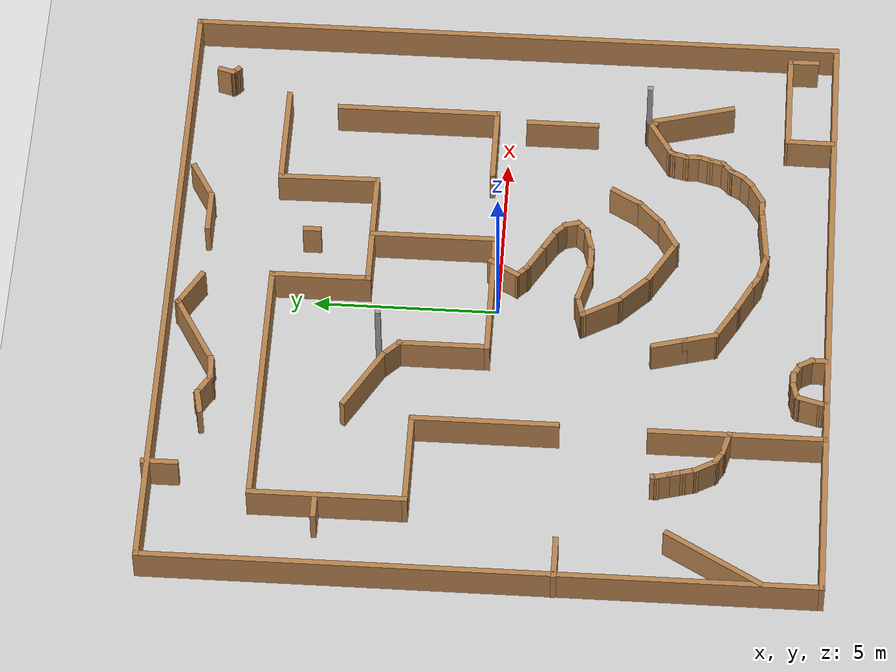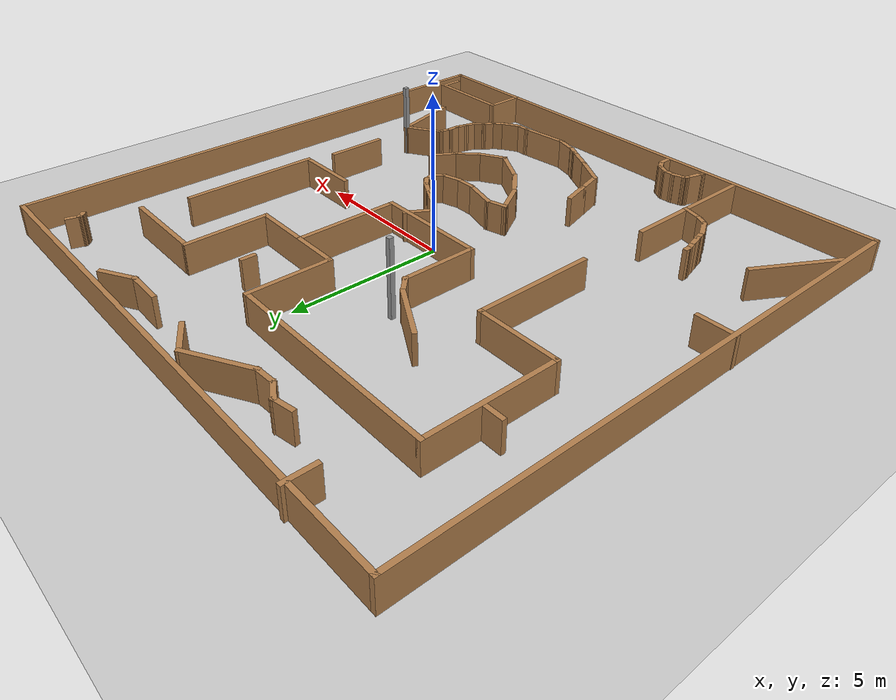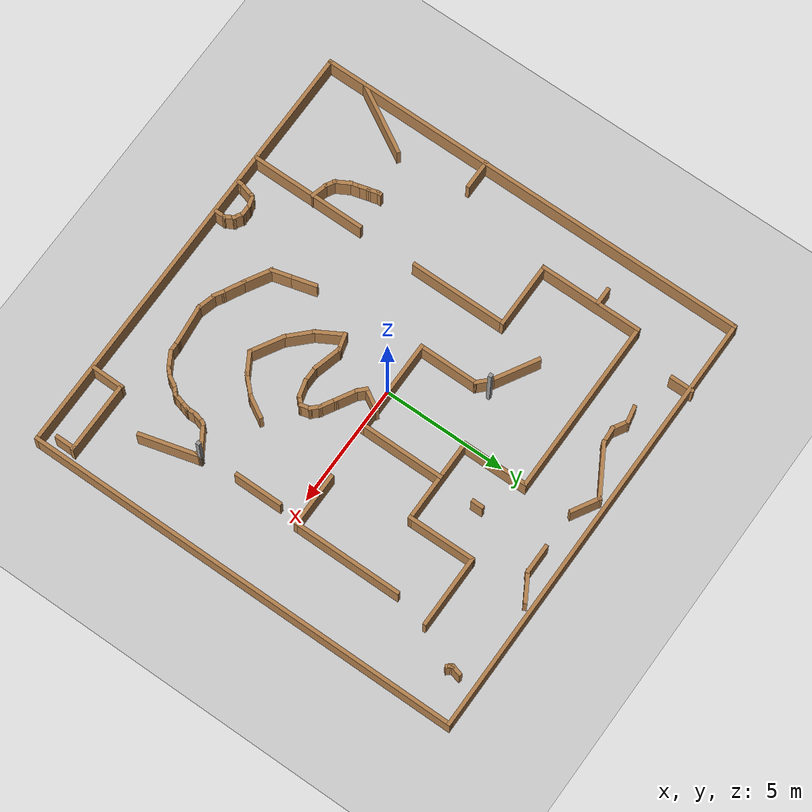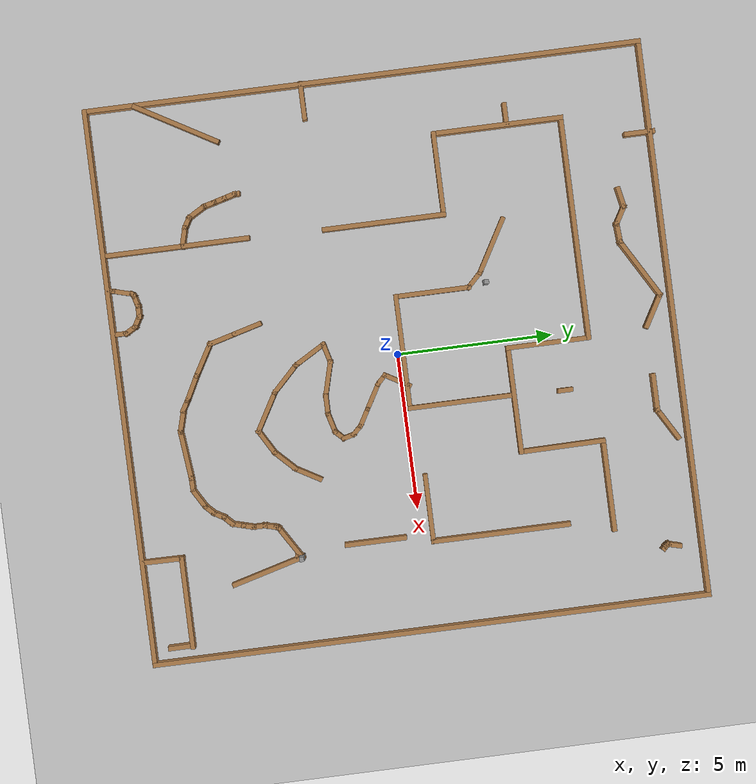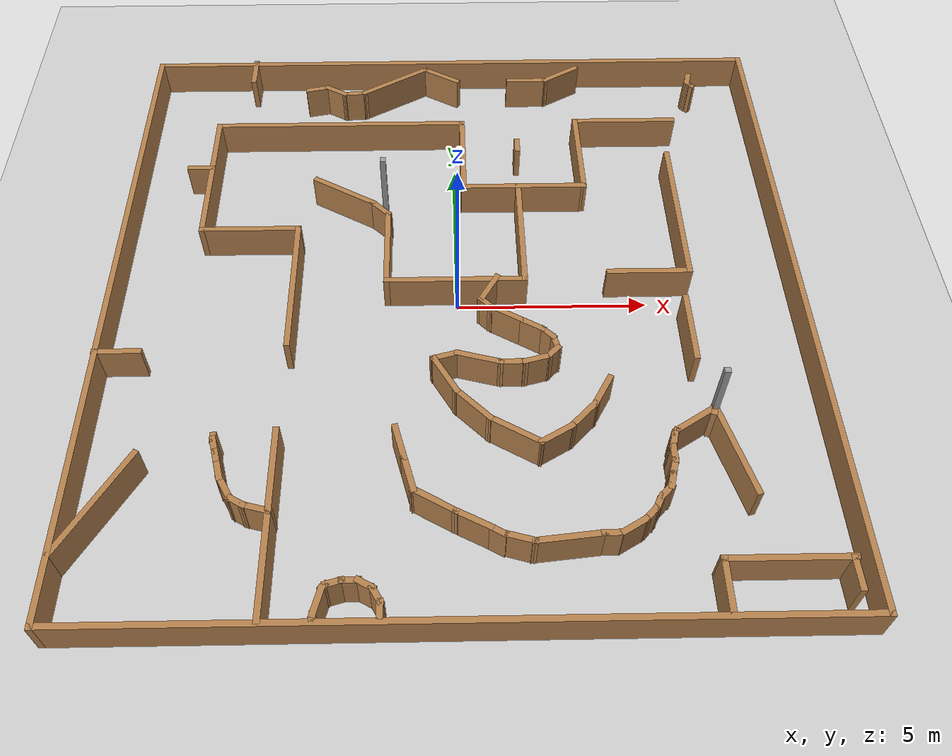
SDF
<sdf version="1.7">
 <world name="default">
  <light name="sun" type="directional">
   <pose>0 0 10 0 -0 0</pose>
   <diffuse>0.8 0.8 0.8 1</diffuse>
   <specular>0.2 0.2 0.2 1</specular>
   <attenuation>
    <range>1000</range>
    <constant>0.9</constant>
    <linear>0.01</linear>
    <quadratic>0.001</quadratic>
   </attenuation>
   <direction>-0.5 0.1 -0.9</direction>
   <spot><inner_angle>0</inner_angle><outer_angle>0</outer_angle><falloff>0</falloff></spot>
  </light>
  <model name="ground_plane">
   <static>1</static>
   <link name="link">
    <collision name="collision">
     <geometry><plane><normal>0 0 1</normal><size>100 100</size></plane></geometry>
     <surface><friction><ode><mu>100</mu><mu2>50</mu2></ode></friction></surface>
    </collision>
    <visual name="visual">
     <cast_shadows>0</cast_shadows>
     <geometry><plane><normal>0 0 1</normal><size>100 100</size></plane></geometry>
     <material>
      <script><uri>file://media/materials/scripts/gazebo.material</uri><name>Gazebo/Grey</name></script>
     </material>
    </visual>
   </link>
  </model>
  <gravity>0 0 -9.8</gravity>
  <magnetic_field>6e-06 2.3e-05 -4.2e-05</magnetic_field>
  <atmosphere type="adiabatic"/>
  <physics type="ode">
   <max_step_size>0.001</max_step_size>
   <real_time_factor>1</real_time_factor>
   <real_time_update_rate>1000</real_time_update_rate>
  </physics>
  <scene><ambient>0.4 0.4 0.4 1</ambient><background>0.7 0.7 0.7 1</background><shadows>1</shadows></scene>
  <audio><device>default</device></audio>
  <spherical_coordinates>
   <surface_model>EARTH_WGS84</surface_model>
   <latitude_deg>0</latitude_deg>
   <longitude_deg>0</longitude_deg>
   <elevation>0</elevation>
   <heading_deg>0</heading_deg>
  </spherical_coordinates>
  <model name="maze">
   <pose>-0.058499 0.020999 0 0 -0 0</pose>
   <link name="Wall_101">
    <collision name="Wall_101_Collision">
     <geometry><box><size>1 0.15 1</size></box></geometry>
     <pose>0 0 0.5 0 -0 0</pose>
    </collision>
    <visual name="Wall_101_Visual">
     <pose>0 0 0.5 0 -0 0</pose>
     <geometry><box><size>1 0.15 1</size></box></geometry>
     <material>
      <script><uri>file://media/materials/scripts/gazebo.material</uri><name>Gazebo/Wood</name></script>
      <ambient>1 1 1 1</ambient>
     </material>
     <meta><layer>0</layer></meta>
    </visual>
    <pose>-1.3665 -4.7025 0 0 -0 -1.30898</pose>
   </link>
   <link name="Wall_102">
    <collision name="Wall_102_Collision">
     <geometry><box><size>1 0.15 1</size></box></geometry>
     <pose>0 0 0.5 0 -0 0</pose>
    </collision>
    <visual name="Wall_102_Visual">
     <pose>0 0 0.5 0 -0 0</pose>
     <geometry><box><size>1 0.15 1</size></box></geometry>
     <material>
      <script><uri>file://media/materials/scripts/gazebo.material</uri><name>Gazebo/Wood</name></script>
      <ambient>1 1 1 1</ambient>
     </material>
     <meta><layer>0</layer></meta>
    </visual>
    <pose>-1.1465 -5.5235 0 0 -0 -1.30898</pose>
   </link>
   <link name="Wall_103">
    <collision name="Wall_103_Collision">
     <geometry><box><size>1.25 0.15 1</size></box></geometry>
     <pose>0 0 0.5 0 -0 0</pose>
    </collision>
    <visual name="Wall_103_Visual">
     <pose>0 0 0.5 0 -0 0</pose>
     <geometry><box><size>1.25 0.15 1</size></box></geometry>
     <material>
      <script><uri>file://media/materials/scripts/gazebo.material</uri><name>Gazebo/Wood</name></script>
      <ambient>1 1 1 1</ambient>
     </material>
     <meta><layer>0</layer></meta>
    </visual>
    <pose>-0.560001 -6.209 0 0 -0 -0.52343</pose>
   </link>
   <link name="Wall_104">
    <collision name="Wall_104_Collision">
     <geometry><box><size>0.99902 0.15 1</size></box></geometry>
     <pose>0 0 0.5 0 -0 0</pose>
    </collision>
    <visual name="Wall_104_Visual">
     <pose>0 0 0.5 0 -0 0</pose>
     <geometry><box><size>0.99902 0.15 1</size></box></geometry>
     <material>
      <script><uri>file://media/materials/scripts/gazebo.material</uri><name>Gazebo/Wood</name></script>
      <ambient>1 1 1 1</ambient>
     </material>
     <meta><layer>0</layer></meta>
    </visual>
    <pose>0.292999 -6.68 0 0 -0 -0.479979</pose>
   </link>
   <link name="Wall_105">
    <collision name="Wall_105_Collision">
     <geometry><box><size>0.494299 0.15 1</size></box></geometry>
     <pose>0 0 0.5 0 -0 0</pose>
    </collision>
    <visual name="Wall_105_Visual">
     <pose>0 0 0.5 0 -0 0</pose>
     <geometry><box><size>0.494299 0.15 1</size></box></geometry>
     <material>
      <script><uri>file://media/materials/scripts/gazebo.material</uri><name>Gazebo/Wood</name></script>
      <ambient>1 1 1 1</ambient>
     </material>
     <meta><layer>0</layer></meta>
    </visual>
    <pose>0.817855 -6.96333 0 0 -0 -0.532017</pose>
   </link>
   <link name="Wall_107">
    <collision name="Wall_107_Collision">
     <geometry><box><size>0.751236 0.15 1</size></box></geometry>
     <pose>0 0 0.5 0 -0 0</pose>
    </collision>
    <visual name="Wall_107_Visual">
     <pose>0 0 0.5 0 -0 0</pose>
     <geometry><box><size>0.751236 0.15 1</size></box></geometry>
     <material>
      <script><uri>file://media/materials/scripts/gazebo.material</uri><name>Gazebo/Wood</name></script>
      <ambient>1 1 1 1</ambient>
     </material>
     <meta><layer>0</layer></meta>
    </visual>
    <pose>1.336 -7.143 0 0 -0 -0.272817</pose>
   </link>
   <link name="Wall_108">
    <collision name="Wall_108_Collision">
     <geometry><box><size>1.67855 0.15 1</size></box></geometry>
     <pose>0 0 0.5 0 -0 0</pose>
    </collision>
    <visual name="Wall_108_Visual">
     <pose>0 0 0.5 0 -0 0</pose>
     <geometry><box><size>1.67855 0.15 1</size></box></geometry>
     <material>
      <script><uri>file://media/materials/scripts/gazebo.material</uri><name>Gazebo/Wood</name></script>
      <ambient>1 1 1 1</ambient>
     </material>
     <meta><layer>0</layer></meta>
    </visual>
    <pose>2.38569 -7.1451 0 0 -0 0.103422</pose>
   </link>
   <link name="Wall_109">
    <collision name="Wall_109_Collision">
     <geometry><box><size>0.50007 0.15 1</size></box></geometry>
     <pose>0 0 0.5 0 -0 0</pose>
    </collision>
    <visual name="Wall_109_Visual">
     <pose>0 0 0.5 0 -0 0</pose>
     <geometry><box><size>0.50007 0.15 1</size></box></geometry>
     <material>
      <script><uri>file://media/materials/scripts/gazebo.material</uri><name>Gazebo/Wood</name></script>
      <ambient>1 1 1 1</ambient>
     </material>
     <meta><layer>0</layer></meta>
    </visual>
    <pose>3.3143 -7.0627 0 0 -0 0.019997</pose>
   </link>
   <link name="Wall_113">
    <collision name="Wall_113_Collision">
     <geometry><box><size>0.75 0.15 1</size></box></geometry>
     <pose>0 0 0.5 0 -0 0</pose>
    </collision>
    <visual name="Wall_113_Visual">
     <pose>0 0 0.5 0 -0 0</pose>
     <geometry><box><size>0.75 0.15 1</size></box></geometry>
     <material>
      <script><uri>file://media/materials/scripts/gazebo.material</uri><name>Gazebo/Wood</name></script>
      <ambient>1 1 1 1</ambient>
     </material>
     <meta><layer>0</layer></meta>
    </visual>
    <pose>3.839 -6.892 0 0 -0 0.524112</pose>
   </link>
   <link name="Wall_114">
    <collision name="Wall_114_Collision">
     <geometry><box><size>0.5 0.15 1</size></box></geometry>
     <pose>0 0 0.5 0 -0 0</pose>
    </collision>
    <visual name="Wall_114_Visual">
     <pose>0 0 0.5 0 -0 0</pose>
     <geometry><box><size>0.5 0.15 1</size></box></geometry>
     <material>
      <script><uri>file://media/materials/scripts/gazebo.material</uri><name>Gazebo/Wood</name></script>
      <ambient>1 1 1 1</ambient>
     </material>
     <meta><layer>0</layer></meta>
    </visual>
    <pose>4.2225 -6.6185 0 0 -0 0.783378</pose>
   </link>
   <link name="Wall_115">
    <collision name="Wall_115_Collision">
     <geometry><box><size>0.5 0.15 1</size></box></geometry>
     <pose>0 0 0.5 0 -0 0</pose>
    </collision>
    <visual name="Wall_115_Visual">
     <pose>0 0 0.5 0 -0 0</pose>
     <geometry><box><size>0.5 0.15 1</size></box></geometry>
     <material>
      <script><uri>file://media/materials/scripts/gazebo.material</uri><name>Gazebo/Wood</name></script>
      <ambient>1 1 1 1</ambient>
     </material>
     <meta><layer>0</layer></meta>
    </visual>
    <pose>4.434 -6.343 0 0 -0 1.04847</pose>
   </link>
   <link name="Wall_116">
    <collision name="Wall_116_Collision">
     <geometry><box><size>0.5 0.15 1</size></box></geometry>
     <pose>0 0 0.5 0 -0 0</pose>
    </collision>
    <visual name="Wall_116_Visual">
     <pose>0 0 0.5 0 -0 0</pose>
     <geometry><box><size>0.5 0.15 1</size></box></geometry>
     <material>
      <script><uri>file://media/materials/scripts/gazebo.material</uri><name>Gazebo/Wood</name></script>
      <ambient>1 1 1 1</ambient>
     </material>
     <meta><layer>0</layer></meta>
    </visual>
    <pose>4.645 -6.0675 0 0 -0 0.785398</pose>
   </link>
   <link name="Wall_118">
    <collision name="Wall_118_Collision">
     <geometry><box><size>0.5 0.15 1</size></box></geometry>
     <pose>0 0 0.5 0 -0 0</pose>
    </collision>
    <visual name="Wall_118_Visual">
     <pose>0 0 0.5 0 -0 0</pose>
     <geometry><box><size>0.5 0.15 1</size></box></geometry>
     <material>
      <script><uri>file://media/materials/scripts/gazebo.material</uri><name>Gazebo/Wood</name></script>
      <ambient>1 1 1 1</ambient>
     </material>
     <meta><layer>0</layer></meta>
    </visual>
    <pose>4.814 -5.775 0 0 -0 1.3078</pose>
   </link>
   <link name="Wall_119">
    <collision name="Wall_119_Collision">
     <geometry><box><size>0.487087 0.15 1</size></box></geometry>
     <pose>0 0 0.5 0 -0 0</pose>
    </collision>
    <visual name="Wall_119_Visual">
     <pose>0 0 0.5 0 -0 0</pose>
     <geometry><box><size>0.487087 0.15 1</size></box></geometry>
     <material>
      <script><uri>file://media/materials/scripts/gazebo.material</uri><name>Gazebo/Wood</name></script>
      <ambient>1 1 1 1</ambient>
     </material>
     <meta><layer>0</layer></meta>
    </visual>
    <pose>4.9045 -5.44357 0 0 -0 1.30052</pose>
   </link>
   <link name="Wall_120">
    <collision name="Wall_120_Collision">
     <geometry><box><size>0.5 0.15 1</size></box></geometry>
     <pose>0 0 0.5 0 -0 0</pose>
    </collision>
    <visual name="Wall_120_Visual">
     <pose>0 0 0.5 0 -0 0</pose>
     <geometry><box><size>0.5 0.15 1</size></box></geometry>
     <material>
      <script><uri>file://media/materials/scripts/gazebo.material</uri><name>Gazebo/Wood</name></script>
      <ambient>1 1 1 1</ambient>
     </material>
     <meta><layer>0</layer></meta>
    </visual>
    <pose>4.9495 -5.09957 0 0 -0 1.5708</pose>
   </link>
   <link name="Wall_121">
    <collision name="Wall_121_Collision">
     <geometry><box><size>0.51275 0.15 1</size></box></geometry>
     <pose>0 0 0.5 0 -0 0</pose>
    </collision>
    <visual name="Wall_121_Visual">
     <pose>0 0 0.5 0 -0 0</pose>
     <geometry><box><size>0.51275 0.15 1</size></box></geometry>
     <material>
      <script><uri>file://media/materials/scripts/gazebo.material</uri><name>Gazebo/Wood</name></script>
      <ambient>1 1 1 1</ambient>
     </material>
     <meta><layer>0</layer></meta>
    </visual>
    <pose>4.995 -4.75558 0 0 -0 1.31723</pose>
   </link>
   <link name="Wall_122">
    <collision name="Wall_122_Collision">
     <geometry><box><size>0.25 0.15 1</size></box></geometry>
     <pose>0 0 0.5 0 -0 0</pose>
    </collision>
    <visual name="Wall_122_Visual">
     <pose>0 0 0.5 0 -0 0</pose>
     <geometry><box><size>0.25 0.15 1</size></box></geometry>
     <material>
      <script><uri>file://media/materials/scripts/gazebo.material</uri><name>Gazebo/Wood</name></script>
      <ambient>1 1 1 1</ambient>
     </material>
     <meta><layer>0</layer></meta>
    </visual>
    <pose>5.0655 -4.5365 0 0 -0 1.04918</pose>
   </link>
   <link name="Wall_123">
    <collision name="Wall_123_Collision">
     <geometry><box><size>1.33169 0.15 1</size></box></geometry>
     <pose>0 0 0.5 0 -0 0</pose>
    </collision>
    <visual name="Wall_123_Visual">
     <pose>0 0 0.5 0 -0 0</pose>
     <geometry><box><size>1.33169 0.15 1</size></box></geometry>
     <material>
      <script><uri>file://media/materials/scripts/gazebo.material</uri><name>Gazebo/Wood</name></script>
      <ambient>1 1 1 1</ambient>
     </material>
     <meta><layer>0</layer></meta>
    </visual>
    <pose>5.59344 -4.18293 0 0 -0 0.552473</pose>
   </link>
   <link name="Wall_124">
    <collision name="Wall_124_Collision">
     <geometry><box><size>0.300153 0.15 1</size></box></geometry>
     <pose>0 0 0.5 0 -0 0</pose>
    </collision>
    <visual name="Wall_124_Visual">
     <pose>0 0 0.5 0 -0 0</pose>
     <geometry><box><size>0.300153 0.15 1</size></box></geometry>
     <material>
      <script><uri>file://media/materials/scripts/gazebo.material</uri><name>Gazebo/Wood</name></script>
      <ambient>1 1 1 1</ambient>
     </material>
     <meta><layer>0</layer></meta>
    </visual>
    <pose>6.07362 -3.94536 0 0 -0 -1.83354</pose>
   </link>
   <link name="Wall_127">
    <collision name="Wall_127_Collision">
     <geometry><box><size>0.15 0.15 2.5</size></box></geometry>
     <pose>0 0 1.25 0 -0 0</pose>
    </collision>
    <visual name="Wall_127_Visual">
     <pose>0 0 1.25 0 -0 0</pose>
     <geometry><box><size>0.15 0.15 2.5</size></box></geometry>
     <material>
      <script><uri>file://media/materials/scripts/gazebo.material</uri><name>Gazebo/Grey</name></script>
      <ambient>1 1 1 1</ambient>
     </material>
     <meta><layer>0</layer></meta>
    </visual>
    <pose>6.0995 -3.852 0 0 -0 0</pose>
   </link>
   <link name="Wall_128">
    <collision name="Wall_128_Collision">
     <geometry><box><size>0.15 0.15 2.5</size></box></geometry>
     <pose>0 0 1.25 0 -0 0</pose>
    </collision>
    <visual name="Wall_128_Visual">
     <pose>0 0 1.25 0 -0 0</pose>
     <geometry><box><size>0.15 0.15 2.5</size></box></geometry>
     <material>
      <script><uri>file://media/materials/scripts/gazebo.material</uri><name>Gazebo/Wood</name></script>
      <ambient>1 1 1 1</ambient>
     </material>
     <meta><layer>0</layer></meta>
    </visual>
    <pose>6.0995 -3.852 0 0 -0 0</pose>
   </link>
   <link name="Wall_132">
    <collision name="Wall_132_Collision">
     <geometry><box><size>1 0.15 1</size></box></geometry>
     <pose>0 0 0.5 0 -0 0</pose>
    </collision>
    <visual name="Wall_132_Visual">
     <pose>0 0 0.5 0 -0 0</pose>
     <geometry><box><size>1 0.15 1</size></box></geometry>
     <material>
      <script><uri>file://media/materials/scripts/gazebo.material</uri><name>Gazebo/Wood</name></script>
      <ambient>1 1 1 1</ambient>
     </material>
     <meta><layer>0</layer></meta>
    </visual>
    <pose>0.874999 -0.141999 0 0 -0 -2.09447</pose>
   </link>
   <link name="Wall_133">
    <collision name="Wall_133_Collision">
     <geometry><box><size>0.5 0.15 1</size></box></geometry>
     <pose>0 0 0.5 0 -0 0</pose>
    </collision>
    <visual name="Wall_133_Visual">
     <pose>0 0 0.5 0 -0 0</pose>
     <geometry><box><size>0.5 0.15 1</size></box></geometry>
     <material>
      <script><uri>file://media/materials/scripts/gazebo.material</uri><name>Gazebo/Wood</name></script>
      <ambient>1 1 1 1</ambient>
     </material>
     <meta><layer>0</layer></meta>
    </visual>
    <pose>0.786499 -0.633999 0 0 -0 -0.785398</pose>
   </link>
   <link name="Wall_134">
    <collision name="Wall_134_Collision">
     <geometry><box><size>1 0.15 1</size></box></geometry>
     <pose>0 0 0.5 0 -0 0</pose>
    </collision>
    <visual name="Wall_134_Visual">
     <pose>0 0 0.5 0 -0 0</pose>
     <geometry><box><size>1 0.15 1</size></box></geometry>
     <material>
      <script><uri>file://media/materials/scripts/gazebo.material</uri><name>Gazebo/Wood</name></script>
      <ambient>1 1 1 1</ambient>
     </material>
     <meta><layer>0</layer></meta>
    </visual>
    <pose>1.2785 -0.970499 0 0 -0 -0.52367</pose>
   </link>
   <link name="Wall_135">
    <collision name="Wall_135_Collision">
     <geometry><box><size>0.75 0.15 1</size></box></geometry>
     <pose>0 0 0.5 0 -0 0</pose>
    </collision>
    <visual name="Wall_135_Visual">
     <pose>0 0 0.5 0 -0 0</pose>
     <geometry><box><size>0.75 0.15 1</size></box></geometry>
     <material>
      <script><uri>file://media/materials/scripts/gazebo.material</uri><name>Gazebo/Wood</name></script>
      <ambient>1 1 1 1</ambient>
     </material>
     <meta><layer>0</layer></meta>
    </visual>
    <pose>1.906 -1.333 0 0 -0 -0.524112</pose>
   </link>
   <link name="Wall_136">
    <collision name="Wall_136_Collision">
     <geometry><box><size>0.5 0.15 1</size></box></geometry>
     <pose>0 0 0.5 0 -0 0</pose>
    </collision>
    <visual name="Wall_136_Visual">
     <pose>0 0 0.5 0 -0 0</pose>
     <geometry><box><size>0.5 0.15 1</size></box></geometry>
     <material>
      <script><uri>file://media/materials/scripts/gazebo.material</uri><name>Gazebo/Wood</name></script>
      <ambient>1 1 1 1</ambient>
     </material>
     <meta><layer>0</layer></meta>
    </visual>
    <pose>2.2895 -1.6065 0 0 -0 -0.783378</pose>
   </link>
   <link name="Wall_137">
    <collision name="Wall_137_Collision">
     <geometry><box><size>0.501001 0.15 1</size></box></geometry>
     <pose>0 0 0.5 0 -0 0</pose>
    </collision>
    <visual name="Wall_137_Visual">
     <pose>0 0 0.5 0 -0 0</pose>
     <geometry><box><size>0.501001 0.15 1</size></box></geometry>
     <material>
      <script><uri>file://media/materials/scripts/gazebo.material</uri><name>Gazebo/Wood</name></script>
      <ambient>1 1 1 1</ambient>
     </material>
     <meta><layer>0</layer></meta>
    </visual>
    <pose>2.459 -1.8995 0 0 -0 -1.30854</pose>
   </link>
   <link name="Wall_138">
    <collision name="Wall_138_Collision">
     <geometry><box><size>0.5 0.15 1</size></box></geometry>
     <pose>0 0 0.5 0 -0 0</pose>
    </collision>
    <visual name="Wall_138_Visual">
     <pose>0 0 0.5 0 -0 0</pose>
     <geometry><box><size>0.5 0.15 1</size></box></geometry>
     <material>
      <script><uri>file://media/materials/scripts/gazebo.material</uri><name>Gazebo/Wood</name></script>
      <ambient>1 1 1 1</ambient>
     </material>
     <meta><layer>0</layer></meta>
    </visual>
    <pose>2.3805 -2.1925 0 0 -0 -2.35821</pose>
   </link>
   <link name="Wall_139">
    <collision name="Wall_139_Collision">
     <geometry><box><size>0.75 0.15 1</size></box></geometry>
     <pose>0 0 0.5 0 -0 0</pose>
    </collision>
    <visual name="Wall_139_Visual">
     <pose>0 0 0.5 0 -0 0</pose>
     <geometry><box><size>0.75 0.15 1</size></box></geometry>
     <material>
      <script><uri>file://media/materials/scripts/gazebo.material</uri><name>Gazebo/Wood</name></script>
      <ambient>1 1 1 1</ambient>
     </material>
     <meta><layer>0</layer></meta>
    </visual>
    <pose>1.967 -2.3935 0 0 -0 -2.88002</pose>
   </link>
   <link name="Wall_140">
    <collision name="Wall_140_Collision">
     <geometry><box><size>0.75 0.15 1</size></box></geometry>
     <pose>0 0 0.5 0 -0 0</pose>
    </collision>
    <visual name="Wall_140_Visual">
     <pose>0 0 0.5 0 -0 0</pose>
     <geometry><box><size>0.75 0.15 1</size></box></geometry>
     <material>
      <script><uri>file://media/materials/scripts/gazebo.material</uri><name>Gazebo/Wood</name></script>
      <ambient>1 1 1 1</ambient>
     </material>
     <meta><layer>0</layer></meta>
    </visual>
    <pose>1.3775 -2.471 0 0 -0 3.14159</pose>
   </link>
   <link name="Wall_141">
    <collision name="Wall_141_Collision">
     <geometry><box><size>1.25 0.15 1</size></box></geometry>
     <pose>0 0 0.5 0 -0 0</pose>
    </collision>
    <visual name="Wall_141_Visual">
     <pose>0 0 0.5 0 -0 0</pose>
     <geometry><box><size>1.25 0.15 1</size></box></geometry>
     <material>
      <script><uri>file://media/materials/scripts/gazebo.material</uri><name>Gazebo/Wood</name></script>
      <ambient>1 1 1 1</ambient>
     </material>
     <meta><layer>0</layer></meta>
    </visual>
    <pose>0.545999 -2.329 0 0 -0 2.88052</pose>
   </link>
   <link name="Wall_142">
    <collision name="Wall_142_Collision">
     <geometry><box><size>0.75 0.15 1</size></box></geometry>
     <pose>0 0 0.5 0 -0 0</pose>
    </collision>
    <visual name="Wall_142_Visual">
     <pose>0 0 0.5 0 -0 0</pose>
     <geometry><box><size>0.75 0.15 1</size></box></geometry>
     <material>
      <script><uri>file://media/materials/scripts/gazebo.material</uri><name>Gazebo/Wood</name></script>
      <ambient>1 1 1 1</ambient>
     </material>
     <meta><layer>0</layer></meta>
    </visual>
    <pose>-0.275501 -2.2645 0 0 -0 -2.88045</pose>
   </link>
   <link name="Wall_143">
    <collision name="Wall_143_Collision">
     <geometry><box><size>1.25 0.15 1</size></box></geometry>
     <pose>0 0 0.5 0 -0 0</pose>
    </collision>
    <visual name="Wall_143_Visual">
     <pose>0 0 0.5 0 -0 0</pose>
     <geometry><box><size>1.25 0.15 1</size></box></geometry>
     <material>
      <script><uri>file://media/materials/scripts/gazebo.material</uri><name>Gazebo/Wood</name></script>
      <ambient>1 1 1 1</ambient>
     </material>
     <meta><layer>0</layer></meta>
    </visual>
    <pose>-0.290501 -2.8185 0 0 -0 -1.04737</pose>
   </link>
   <link name="Wall_144">
    <collision name="Wall_144_Collision">
     <geometry><box><size>1.25 0.15 1</size></box></geometry>
     <pose>0 0 0.5 0 -0 0</pose>
    </collision>
    <visual name="Wall_144_Visual">
     <pose>0 0 0.5 0 -0 0</pose>
     <geometry><box><size>1.25 0.15 1</size></box></geometry>
     <material>
      <script><uri>file://media/materials/scripts/gazebo.material</uri><name>Gazebo/Wood</name></script>
      <ambient>1 1 1 1</ambient>
     </material>
     <meta><layer>0</layer></meta>
    </visual>
    <pose>0.373499 -3.6835 0 0 -0 -0.784755</pose>
   </link>
   <link name="Wall_145">
    <collision name="Wall_145_Collision">
     <geometry><box><size>1.5 0.15 1</size></box></geometry>
     <pose>0 0 0.5 0 -0 0</pose>
    </collision>
    <visual name="Wall_145_Visual">
     <pose>0 0 0.5 0 -0 0</pose>
     <geometry><box><size>1.5 0.15 1</size></box></geometry>
     <material>
      <script><uri>file://media/materials/scripts/gazebo.material</uri><name>Gazebo/Wood</name></script>
      <ambient>1 1 1 1</ambient>
     </material>
     <meta><layer>0</layer></meta>
    </visual>
    <pose>1.347 -4.4095 0 0 -0 -0.523649</pose>
   </link>
   <link name="Wall_146">
    <collision name="Wall_146_Collision">
     <geometry><box><size>1 0.15 1</size></box></geometry>
     <pose>0 0 0.5 0 -0 0</pose>
    </collision>
    <visual name="Wall_146_Visual">
     <pose>0 0 0.5 0 -0 0</pose>
     <geometry><box><size>1 0.15 1</size></box></geometry>
     <material>
      <script><uri>file://media/materials/scripts/gazebo.material</uri><name>Gazebo/Wood</name></script>
      <ambient>1 1 1 1</ambient>
     </material>
     <meta><layer>0</layer></meta>
    </visual>
    <pose>2.3 -4.5345 0 0 -0 0.523083</pose>
   </link>
   <link name="Wall_147">
    <collision name="Wall_147_Collision">
     <geometry><box><size>1 0.15 1</size></box></geometry>
     <pose>0 0 0.5 0 -0 0</pose>
    </collision>
    <visual name="Wall_147_Visual">
     <pose>0 0 0.5 0 -0 0</pose>
     <geometry><box><size>1 0.15 1</size></box></geometry>
     <material>
      <script><uri>file://media/materials/scripts/gazebo.material</uri><name>Gazebo/Wood</name></script>
      <ambient>1 1 1 1</ambient>
     </material>
     <meta><layer>0</layer></meta>
    </visual>
    <pose>2.969 -4.0215 0 0 -0 0.785398</pose>
   </link>
   <link name="Wall_148">
    <collision name="Wall_148_Collision">
     <geometry><box><size>1 0.15 1</size></box></geometry>
     <pose>0 0 0.5 0 -0 0</pose>
    </collision>
    <visual name="Wall_148_Visual">
     <pose>0 0 0.5 0 -0 0</pose>
     <geometry><box><size>1 0.15 1</size></box></geometry>
     <material>
      <script><uri>file://media/materials/scripts/gazebo.material</uri><name>Gazebo/Wood</name></script>
      <ambient>1 1 1 1</ambient>
     </material>
     <meta><layer>0</layer></meta>
    </visual>
    <pose>3.482 -3.353 0 0 -0 1.04713</pose>
   </link>
   <link name="Wall_151">
    <collision name="Wall_151_Collision">
     <geometry><box><size>1.25 0.15 1</size></box></geometry>
     <pose>0 0 0.5 0 -0 0</pose>
    </collision>
    <visual name="Wall_151_Visual">
     <pose>0 0 0.5 0 -0 0</pose>
     <geometry><box><size>1.25 0.15 1</size></box></geometry>
     <material>
      <script><uri>file://media/materials/scripts/gazebo.material</uri><name>Gazebo/Wood</name></script>
      <ambient>1 1 1 1</ambient>
     </material>
     <meta><layer>0</layer></meta>
    </visual>
    <pose>-8.3795 -2.013 0 0 -0 0</pose>
   </link>
   <link name="Wall_153">
    <collision name="Wall_153_Collision">
     <geometry><box><size>0.75 0.15 1</size></box></geometry>
     <pose>0 0 0.5 0 -0 0</pose>
    </collision>
    <visual name="Wall_153_Visual">
     <pose>0 0 0.5 0 -0 0</pose>
     <geometry><box><size>0.75 0.15 1</size></box></geometry>
     <material>
      <script><uri>file://media/materials/scripts/gazebo.material</uri><name>Gazebo/Wood</name></script>
      <ambient>1 1 1 1</ambient>
     </material>
     <meta><layer>0</layer></meta>
    </visual>
    <pose>-7.1285 4.371 0 0 -0 3.14159</pose>
   </link>
   <link name="Wall_155">
    <collision name="Wall_155_Collision">
     <geometry><box><size>1 0.15 1</size></box></geometry>
     <pose>0 0 0.5 0 -0 0</pose>
    </collision>
    <visual name="Wall_155_Visual">
     <pose>0 0 0.5 0 -0 0</pose>
     <geometry><box><size>1 0.15 1</size></box></geometry>
     <material>
      <script><uri>file://media/materials/scripts/gazebo.material</uri><name>Gazebo/Wood</name></script>
      <ambient>1 1 1 1</ambient>
     </material>
     <meta><layer>0</layer></meta>
    </visual>
    <pose>-6.0035 8.548 0 0 -0 -1.5708</pose>
   </link>
   <link name="Wall_157">
    <collision name="Wall_157_Collision">
     <geometry><box><size>0.741291 0.15 1</size></box></geometry>
     <pose>0 0 0.5 0 -0 0</pose>
    </collision>
    <visual name="Wall_157_Visual">
     <pose>0 0 0.5 0 -0 0</pose>
     <geometry><box><size>0.741291 0.15 1</size></box></geometry>
     <material>
      <script><uri>file://media/materials/scripts/gazebo.material</uri><name>Gazebo/Wood</name></script>
      <ambient>1 1 1 1</ambient>
     </material>
     <meta><layer>0</layer></meta>
    </visual>
    <pose>-4.0115 7.7005 0 0 -0 0.195737</pose>
   </link>
   <link name="Wall_158">
    <collision name="Wall_158_Collision">
     <geometry><box><size>0.749467 0.15 1</size></box></geometry>
     <pose>0 0 0.5 0 -0 0</pose>
    </collision>
    <visual name="Wall_158_Visual">
     <pose>0 0 0.5 0 -0 0</pose>
     <geometry><box><size>0.749467 0.15 1</size></box></geometry>
     <material>
      <script><uri>file://media/materials/scripts/gazebo.material</uri><name>Gazebo/Wood</name></script>
      <ambient>1 1 1 1</ambient>
     </material>
     <meta><layer>0</layer></meta>
    </visual>
    <pose>-3.462 7.608 0 0 -0 -0.524112</pose>
   </link>
   <link name="Wall_159">
    <collision name="Wall_159_Collision">
     <geometry><box><size>0.752327 0.15 1</size></box></geometry>
     <pose>0 0 0.5 0 -0 0</pose>
    </collision>
    <visual name="Wall_159_Visual">
     <pose>0 0 0.5 0 -0 0</pose>
     <geometry><box><size>0.752327 0.15 1</size></box></geometry>
     <material>
      <script><uri>file://media/materials/scripts/gazebo.material</uri><name>Gazebo/Wood</name></script>
      <ambient>1 1 1 1</ambient>
     </material>
     <meta><layer>0</layer></meta>
    </visual>
    <pose>-2.9025 7.478 0 0 -0 0.066568</pose>
   </link>
   <link name="Wall_160">
    <collision name="Wall_160_Collision">
     <geometry><box><size>2.25 0.15 1</size></box></geometry>
     <pose>0 0 0.5 0 -0 0</pose>
    </collision>
    <visual name="Wall_160_Visual">
     <pose>0 0 0.5 0 -0 0</pose>
     <geometry><box><size>2.25 0.15 1</size></box></geometry>
     <material>
      <script><uri>file://media/materials/scripts/gazebo.material</uri><name>Gazebo/Wood</name></script>
      <ambient>1 1 1 1</ambient>
     </material>
     <meta><layer>0</layer></meta>
    </visual>
    <pose>-1.693 8.023 0 0 -0 0.523516</pose>
   </link>
   <link name="Wall_161">
    <collision name="Wall_161_Collision">
     <geometry><box><size>1.25 0.15 1</size></box></geometry>
     <pose>0 0 0.5 0 -0 0</pose>
    </collision>
    <visual name="Wall_161_Visual">
     <pose>0 0 0.5 0 -0 0</pose>
     <geometry><box><size>1.25 0.15 1</size></box></geometry>
     <material>
      <script><uri>file://media/materials/scripts/gazebo.material</uri><name>Gazebo/Wood</name></script>
      <ambient>1 1 1 1</ambient>
     </material>
     <meta><layer>0</layer></meta>
    </visual>
    <pose>-0.307501 8.273 0 0 -0 -0.523884</pose>
   </link>
   <link name="Wall_163">
    <collision name="Wall_163_Collision">
     <geometry><box><size>1.25 0.15 1</size></box></geometry>
     <pose>0 0 0.5 0 -0 0</pose>
    </collision>
    <visual name="Wall_163_Visual">
     <pose>0 0 0.5 0 -0 0</pose>
     <geometry><box><size>1.25 0.15 1</size></box></geometry>
     <material>
      <script><uri>file://media/materials/scripts/gazebo.material</uri><name>Gazebo/Wood</name></script>
      <ambient>1 1 1 1</ambient>
     </material>
     <meta><layer>0</layer></meta>
    </visual>
    <pose>2.3185 7.998 0 0 -0 0</pose>
   </link>
   <link name="Wall_164">
    <collision name="Wall_164_Collision">
     <geometry><box><size>1.25 0.15 1</size></box></geometry>
     <pose>0 0 0.5 0 -0 0</pose>
    </collision>
    <visual name="Wall_164_Visual">
     <pose>0 0 0.5 0 -0 0</pose>
     <geometry><box><size>1.25 0.15 1</size></box></geometry>
     <material>
      <script><uri>file://media/materials/scripts/gazebo.material</uri><name>Gazebo/Wood</name></script>
      <ambient>1 1 1 1</ambient>
     </material>
     <meta><layer>0</layer></meta>
    </visual>
    <pose>3.345 8.273 0 0 -0 0.52343</pose>
   </link>
   <link name="Wall_166">
    <collision name="Wall_166_Collision">
     <geometry><box><size>0.5 0.15 1</size></box></geometry>
     <pose>0 0 0.5 0 -0 0</pose>
    </collision>
    <visual name="Wall_166_Visual">
     <pose>0 0 0.5 0 -0 0</pose>
     <geometry><box><size>0.5 0.15 1</size></box></geometry>
     <material>
      <script><uri>file://media/materials/scripts/gazebo.material</uri><name>Gazebo/Wood</name></script>
      <ambient>1 1 1 1</ambient>
     </material>
     <meta><layer>0</layer></meta>
    </visual>
    <pose>1.8695 5.154 0 0 -0 -1.5708</pose>
   </link>
   <link name="Wall_168">
    <collision name="Wall_168_Collision">
     <geometry><box><size>0.503493 0.15 1</size></box></geometry>
     <pose>0 0 0.5 0 -0 0</pose>
    </collision>
    <visual name="Wall_168_Visual">
     <pose>0 0 0.5 0 -0 0</pose>
     <geometry><box><size>0.503493 0.15 1</size></box></geometry>
     <material>
      <script><uri>file://media/materials/scripts/gazebo.material</uri><name>Gazebo/Wood</name></script>
      <ambient>1 1 1 1</ambient>
     </material>
     <meta><layer>0</layer></meta>
    </visual>
    <pose>7.2235 7.9775 0 0 -0 -1.83432</pose>
   </link>
   <link name="Wall_169">
    <collision name="Wall_169_Collision">
     <geometry><box><size>0.249895 0.15 1</size></box></geometry>
     <pose>0 0 0.5 0 -0 0</pose>
    </collision>
    <visual name="Wall_169_Visual">
     <pose>0 0 0.5 0 -0 0</pose>
     <geometry><box><size>0.249895 0.15 1</size></box></geometry>
     <material>
      <script><uri>file://media/materials/scripts/gazebo.material</uri><name>Gazebo/Wood</name></script>
      <ambient>1 1 1 1</ambient>
     </material>
     <meta><layer>0</layer></meta>
    </visual>
    <pose>7.2025 7.764 0 0 -0 -1.04417</pose>
   </link>
   <link name="Wall_170">
    <collision name="Wall_170_Collision">
     <geometry><box><size>0.249035 0.15 1</size></box></geometry>
     <pose>0 0 0.5 0 -0 0</pose>
    </collision>
    <visual name="Wall_170_Visual">
     <pose>0 0 0.5 0 -0 0</pose>
     <geometry><box><size>0.249035 0.15 1</size></box></geometry>
     <material>
      <script><uri>file://media/materials/scripts/gazebo.material</uri><name>Gazebo/Wood</name></script>
      <ambient>1 1 1 1</ambient>
     </material>
     <meta><layer>0</layer></meta>
    </visual>
    <pose>7.2635 7.687 0 0 -0 -0.756834</pose>
   </link>
   <link name="Wall_172">
    <collision name="Wall_172_Collision">
     <geometry><box><size>2 0.15 1</size></box></geometry>
     <pose>0 0 0.5 0 -0 0</pose>
    </collision>
    <visual name="Wall_172_Visual">
     <pose>0 0 0.5 0 -0 0</pose>
     <geometry><box><size>2 0.15 1</size></box></geometry>
     <material>
      <script><uri>file://media/materials/scripts/gazebo.material</uri><name>Gazebo/Wood</name></script>
      <ambient>1 1 1 1</ambient>
     </material>
     <meta><layer>0</layer></meta>
    </visual>
    <pose>5.8985 -1.469 0 0 -0 -1.5708</pose>
   </link>
   <link name="Wall_174">
    <collision name="Wall_174_Collision">
     <geometry><box><size>0.25 0.15 1</size></box></geometry>
     <pose>0 0 0.5 0 -0 0</pose>
    </collision>
    <visual name="Wall_174_Visual">
     <pose>0 0 0.5 0 -0 0</pose>
     <geometry><box><size>0.25 0.15 1</size></box></geometry>
     <material>
      <script><uri>file://media/materials/scripts/gazebo.material</uri><name>Gazebo/Wood</name></script>
      <ambient>1 1 1 1</ambient>
     </material>
     <meta><layer>0</layer></meta>
    </visual>
    <pose>-3.1075 -8.854 0 0 -0 1.5708</pose>
   </link>
   <link name="Wall_175">
    <collision name="Wall_175_Collision">
     <geometry><box><size>0.749634 0.15 1</size></box></geometry>
     <pose>0 0 0.5 0 -0 0</pose>
    </collision>
    <visual name="Wall_175_Visual">
     <pose>0 0 0.5 0 -0 0</pose>
     <geometry><box><size>0.749634 0.15 1</size></box></geometry>
     <material>
      <script><uri>file://media/materials/scripts/gazebo.material</uri><name>Gazebo/Wood</name></script>
      <ambient>1 1 1 1</ambient>
     </material>
     <meta><layer>0</layer></meta>
    </visual>
    <pose>-3.0285 -8.515 0 0 -0 1.30396</pose>
   </link>
   <link name="Wall_176">
    <collision name="Wall_176_Collision">
     <geometry><box><size>0.250409 0.15 1</size></box></geometry>
     <pose>0 0 0.5 0 -0 0</pose>
    </collision>
    <visual name="Wall_176_Visual">
     <pose>0 0 0.5 0 -0 0</pose>
     <geometry><box><size>0.250409 0.15 1</size></box></geometry>
     <material>
      <script><uri>file://media/materials/scripts/gazebo.material</uri><name>Gazebo/Wood</name></script>
      <ambient>1 1 1 1</ambient>
     </material>
     <meta><layer>0</layer></meta>
    </visual>
    <pose>-2.914 -8.1905 0 0 -0 0.785398</pose>
   </link>
   <link name="Wall_177">
    <collision name="Wall_177_Collision">
     <geometry><box><size>0.497403 0.15 1</size></box></geometry>
     <pose>0 0 0.5 0 -0 0</pose>
    </collision>
    <visual name="Wall_177_Visual">
     <pose>0 0 0.5 0 -0 0</pose>
     <geometry><box><size>0.497403 0.15 1</size></box></geometry>
     <material>
      <script><uri>file://media/materials/scripts/gazebo.material</uri><name>Gazebo/Wood</name></script>
      <ambient>1 1 1 1</ambient>
     </material>
     <meta><layer>0</layer></meta>
    </visual>
    <pose>-2.711 -8.109 0 0 -0 0.268019</pose>
   </link>
   <link name="Wall_178">
    <collision name="Wall_178_Collision">
     <geometry><box><size>0.5 0.15 1</size></box></geometry>
     <pose>0 0 0.5 0 -0 0</pose>
    </collision>
    <visual name="Wall_178_Visual">
     <pose>0 0 0.5 0 -0 0</pose>
     <geometry><box><size>0.5 0.15 1</size></box></geometry>
     <material>
      <script><uri>file://media/materials/scripts/gazebo.material</uri><name>Gazebo/Wood</name></script>
      <ambient>1 1 1 1</ambient>
     </material>
     <meta><layer>0</layer></meta>
    </visual>
    <pose>-2.3685 -8.063 0 0 -0 0</pose>
   </link>
   <link name="Wall_186">
    <collision name="Wall_186_Collision">
     <geometry><box><size>1.36185 0.15 1</size></box></geometry>
     <pose>0 0 0.5 0 -0 0</pose>
    </collision>
    <visual name="Wall_186_Visual">
     <pose>0 0 0.5 0 -0 0</pose>
     <geometry><box><size>1.36185 0.15 1</size></box></geometry>
     <material>
      <script><uri>file://media/materials/scripts/gazebo.material</uri><name>Gazebo/Wood</name></script>
      <ambient>1 1 1 1</ambient>
     </material>
     <meta><layer>0</layer></meta>
    </visual>
    <pose>5.64477 -8.30344 0 0 -0 1.55994</pose>
   </link>
   <link name="Wall_187">
    <collision name="Wall_187_Collision">
     <geometry><box><size>3 0.15 1</size></box></geometry>
     <pose>0 0 0.5 0 -0 0</pose>
    </collision>
    <visual name="Wall_187_Visual">
     <pose>0 0 0.5 0 -0 0</pose>
     <geometry><box><size>3 0.15 1</size></box></geometry>
     <material>
      <script><uri>file://media/materials/scripts/gazebo.material</uri><name>Gazebo/Wood</name></script>
      <ambient>1 1 1 1</ambient>
     </material>
     <meta><layer>0</layer></meta>
    </visual>
    <pose>7.07635 -7.70412 0 0 -0 0</pose>
   </link>
   <link name="Wall_190">
    <collision name="Wall_190_Collision">
     <geometry><box><size>0.834709 0.15 1</size></box></geometry>
     <pose>0 0 0.5 0 -0 0</pose>
    </collision>
    <visual name="Wall_190_Visual">
     <pose>0 0 0.5 0 -0 0</pose>
     <geometry><box><size>0.834709 0.15 1</size></box></geometry>
     <material>
      <script><uri>file://media/materials/scripts/gazebo.material</uri><name>Gazebo/Wood</name></script>
      <ambient>1 1 1 1</ambient>
     </material>
     <meta><layer>0</layer></meta>
    </visual>
    <pose>8.46114 -8.07067 0 0 -0 -1.55805</pose>
   </link>
   <link name="Wall_192">
    <collision name="Wall_192_Collision">
     <geometry><box><size>0.75 0.15 1</size></box></geometry>
     <pose>0 0 0.5 0 -0 0</pose>
    </collision>
    <visual name="Wall_192_Visual">
     <pose>0 0 0.5 0 -0 0</pose>
     <geometry><box><size>0.75 0.15 1</size></box></geometry>
     <material>
      <script><uri>file://media/materials/scripts/gazebo.material</uri><name>Gazebo/Wood</name></script>
      <ambient>1 1 1 1</ambient>
     </material>
     <meta><layer>0</layer></meta>
    </visual>
    <pose>-4.5345 -6.3345 0 0 -0 2.88045</pose>
   </link>
   <link name="Wall_193">
    <collision name="Wall_193_Collision">
     <geometry><box><size>0.5 0.15 1</size></box></geometry>
     <pose>0 0 0.5 0 -0 0</pose>
    </collision>
    <visual name="Wall_193_Visual">
     <pose>0 0 0.5 0 -0 0</pose>
     <geometry><box><size>0.5 0.15 1</size></box></geometry>
     <material>
      <script><uri>file://media/materials/scripts/gazebo.material</uri><name>Gazebo/Wood</name></script>
      <ambient>1 1 1 1</ambient>
     </material>
     <meta><layer>0</layer></meta>
    </visual>
    <pose>-4.976 -6.1695 0 0 -0 2.61784</pose>
   </link>
   <link name="Wall_194">
    <collision name="Wall_194_Collision">
     <geometry><box><size>0.75 0.15 1</size></box></geometry>
     <pose>0 0 0.5 0 -0 0</pose>
    </collision>
    <visual name="Wall_194_Visual">
     <pose>0 0 0.5 0 -0 0</pose>
     <geometry><box><size>0.75 0.15 1</size></box></geometry>
     <material>
      <script><uri>file://media/materials/scripts/gazebo.material</uri><name>Gazebo/Wood</name></script>
      <ambient>1 1 1 1</ambient>
     </material>
     <meta><layer>0</layer></meta>
    </visual>
    <pose>-5.2775 -5.822 0 0 -0 2.09408</pose>
   </link>
   <link name="Wall_195">
    <collision name="Wall_195_Collision">
     <geometry><box><size>0.5 0.15 1</size></box></geometry>
     <pose>0 0 0.5 0 -0 0</pose>
    </collision>
    <visual name="Wall_195_Visual">
     <pose>0 0 0.5 0 -0 0</pose>
     <geometry><box><size>0.5 0.15 1</size></box></geometry>
     <material>
      <script><uri>file://media/materials/scripts/gazebo.material</uri><name>Gazebo/Wood</name></script>
      <ambient>1 1 1 1</ambient>
     </material>
     <meta><layer>0</layer></meta>
    </visual>
    <pose>-5.473 -5.393 0 0 -0 1.83379</pose>
   </link>
   <link name="Wall_196">
    <collision name="Wall_196_Collision">
     <geometry><box><size>0.5 0.15 1</size></box></geometry>
     <pose>0 0 0.5 0 -0 0</pose>
    </collision>
    <visual name="Wall_196_Visual">
     <pose>0 0 0.5 0 -0 0</pose>
     <geometry><box><size>0.5 0.15 1</size></box></geometry>
     <material>
      <script><uri>file://media/materials/scripts/gazebo.material</uri><name>Gazebo/Wood</name></script>
      <ambient>1 1 1 1</ambient>
     </material>
     <meta><layer>0</layer></meta>
    </visual>
    <pose>-5.5635 -5.055 0 0 -0 1.83103</pose>
   </link>
   <link name="Wall_197">
    <collision name="Wall_197_Collision">
     <geometry><box><size>0.5 0.15 1</size></box></geometry>
     <pose>0 0 0.5 0 -0 0</pose>
    </collision>
    <visual name="Wall_197_Visual">
     <pose>0 0 0.5 0 -0 0</pose>
     <geometry><box><size>0.5 0.15 1</size></box></geometry>
     <material>
      <script><uri>file://media/materials/scripts/gazebo.material</uri><name>Gazebo/Wood</name></script>
      <ambient>1 1 1 1</ambient>
     </material>
     <meta><layer>0</layer></meta>
    </visual>
    <pose>-5.654 -4.717 0 0 -0 1.83379</pose>
   </link>
   <link name="Wall_198">
    <collision name="Wall_198_Collision">
     <geometry><box><size>0.25 0.15 1</size></box></geometry>
     <pose>0 0 0.5 0 -0 0</pose>
    </collision>
    <visual name="Wall_198_Visual">
     <pose>0 0 0.5 0 -0 0</pose>
     <geometry><box><size>0.25 0.15 1</size></box></geometry>
     <material>
      <script><uri>file://media/materials/scripts/gazebo.material</uri><name>Gazebo/Wood</name></script>
      <ambient>1 1 1 1</ambient>
     </material>
     <meta><layer>0</layer></meta>
    </visual>
    <pose>-5.6995 -4.498 0 0 -0 1.5708</pose>
   </link>
   <link name="Wall_200">
    <collision name="Wall_200_Collision">
     <geometry><box><size>3 0.15 1</size></box></geometry>
     <pose>0 0 0.5 0 -0 0</pose>
    </collision>
    <visual name="Wall_200_Visual">
     <pose>0 0 0.5 0 -0 0</pose>
     <geometry><box><size>3 0.15 1</size></box></geometry>
     <material>
      <script><uri>file://media/materials/scripts/gazebo.material</uri><name>Gazebo/Wood</name></script>
      <ambient>1 1 1 1</ambient>
     </material>
     <meta><layer>0</layer></meta>
    </visual>
    <pose>-8.157 -6.129 0 0 -0 1.04717</pose>
   </link>
   <link name="Wall_202">
    <collision name="Wall_202_Collision">
     <geometry><box><size>0.504195 0.15 1</size></box></geometry>
     <pose>0 0 0.5 0 -0 0</pose>
    </collision>
    <visual name="Wall_202_Visual">
     <pose>0 0 0.5 0 -0 0</pose>
     <geometry><box><size>0.504195 0.15 1</size></box></geometry>
     <material>
      <script><uri>file://media/materials/scripts/gazebo.material</uri><name>Gazebo/Wood</name></script>
      <ambient>1 1 1 1</ambient>
     </material>
     <meta><layer>0</layer></meta>
    </visual>
    <pose>-2.0395 -8.1505 0 0 -0 -0.516695</pose>
   </link>
   <link name="Wall_203">
    <collision name="Wall_203_Collision">
     <geometry><box><size>0.5 0.15 1</size></box></geometry>
     <pose>0 0 0.5 0 -0 0</pose>
    </collision>
    <visual name="Wall_203_Visual">
     <pose>0 0 0.5 0 -0 0</pose>
     <geometry><box><size>0.5 0.15 1</size></box></geometry>
     <material>
      <script><uri>file://media/materials/scripts/gazebo.material</uri><name>Gazebo/Wood</name></script>
      <ambient>1 1 1 1</ambient>
     </material>
     <meta><layer>0</layer></meta>
    </visual>
    <pose>-1.79893 -8.39009 0 0 -0 -1.05332</pose>
   </link>
   <link name="Wall_204">
    <collision name="Wall_204_Collision">
     <geometry><box><size>0.498839 0.15 1</size></box></geometry>
     <pose>0 0 0.5 0 -0 0</pose>
    </collision>
    <visual name="Wall_204_Visual">
     <pose>0 0 0.5 0 -0 0</pose>
     <geometry><box><size>0.498839 0.15 1</size></box></geometry>
     <material>
      <script><uri>file://media/materials/scripts/gazebo.material</uri><name>Gazebo/Wood</name></script>
      <ambient>1 1 1 1</ambient>
     </material>
     <meta><layer>0</layer></meta>
    </visual>
    <pose>-1.71393 -8.71659 0 0 -0 -1.5798</pose>
   </link>
   <link name="Wall_206">
    <collision name="Wall_206_Collision">
     <geometry><box><size>2.5 0.15 1</size></box></geometry>
     <pose>0 0 0.5 0 -0 0</pose>
    </collision>
    <visual name="Wall_206_Visual">
     <pose>0 0 0.5 0 -0 0</pose>
     <geometry><box><size>2.5 0.15 1</size></box></geometry>
     <material>
      <script><uri>file://media/materials/scripts/gazebo.material</uri><name>Gazebo/Wood</name></script>
      <ambient>1 1 1 1</ambient>
     </material>
     <meta><layer>0</layer></meta>
    </visual>
    <pose>6.4035 -4.9865 0 0 -0 -1.30899</pose>
   </link>
   <link name="Wall_208">
    <collision name="Wall_208_Collision">
     <geometry><box><size>4.5 0.15 1</size></box></geometry>
     <pose>0 0 0.5 0 -0 0</pose>
    </collision>
    <visual name="Wall_208_Visual">
     <pose>0 0 0.5 0 -0 0</pose>
     <geometry><box><size>4.5 0.15 1</size></box></geometry>
     <material>
      <script><uri>file://media/materials/scripts/gazebo.material</uri><name>Gazebo/Wood</name></script>
      <ambient>1 1 1 1</ambient>
     </material>
     <meta><layer>0</layer></meta>
    </visual>
    <pose>6.1355 2.535 0 0 -0 -1.5708</pose>
   </link>
   <link name="Wall_209">
    <collision name="Wall_209_Collision">
     <geometry><box><size>2.25 0.15 1</size></box></geometry>
     <pose>0 0 0.5 0 -0 0</pose>
    </collision>
    <visual name="Wall_209_Visual">
     <pose>0 0 0.5 0 -0 0</pose>
     <geometry><box><size>2.25 0.15 1</size></box></geometry>
     <material>
      <script><uri>file://media/materials/scripts/gazebo.material</uri><name>Gazebo/Wood</name></script>
      <ambient>1 1 1 1</ambient>
     </material>
     <meta><layer>0</layer></meta>
    </visual>
    <pose>5.0855 0.360001 0 0 -0 3.14159</pose>
   </link>
   <link name="Wall_60">
    <collision name="Wall_60_Collision">
     <geometry><box><size>18 0.15 1</size></box></geometry>
     <pose>0 0 0.5 0 -0 0</pose>
    </collision>
    <visual name="Wall_60_Visual">
     <pose>0 0 0.5 0 -0 0</pose>
     <geometry><box><size>18 0.15 1</size></box></geometry>
     <material>
      <script><uri>file://media/materials/scripts/gazebo.material</uri><name>Gazebo/Wood</name></script>
      <ambient>1 1 1 1</ambient>
     </material>
     <meta><layer>0</layer></meta>
    </visual>
    <pose>8.9295 -0.047999 0 0 -0 -1.5708</pose>
   </link>
   <link name="Wall_61">
    <collision name="Wall_61_Collision">
     <geometry><box><size>17.99 0.15 1</size></box></geometry>
     <pose>0 0 0.5 0 -0 0</pose>
    </collision>
    <visual name="Wall_61_Visual">
     <pose>0 0 0.5 0 -0 0</pose>
     <geometry><box><size>17.99 0.15 1</size></box></geometry>
     <material>
      <script><uri>file://media/materials/scripts/gazebo.material</uri><name>Gazebo/Wood</name></script>
      <ambient>1 1 1 1</ambient>
     </material>
     <meta><layer>0</layer></meta>
    </visual>
    <pose>0.009499 -8.973 0 0 -0 3.14159</pose>
   </link>
   <link name="Wall_62">
    <collision name="Wall_62_Collision">
     <geometry><box><size>18 0.15 1</size></box></geometry>
     <pose>0 0 0.5 0 -0 0</pose>
    </collision>
    <visual name="Wall_62_Visual">
     <pose>0 0 0.5 0 -0 0</pose>
     <geometry><box><size>18 0.15 1</size></box></geometry>
     <material>
      <script><uri>file://media/materials/scripts/gazebo.material</uri><name>Gazebo/Wood</name></script>
      <ambient>1 1 1 1</ambient>
     </material>
     <meta><layer>0</layer></meta>
    </visual>
    <pose>-8.9105 -0.047999 0 0 -0 1.5708</pose>
   </link>
   <link name="Wall_65">
    <collision name="Wall_65_Collision">
     <geometry><box><size>17.99 0.15 1</size></box></geometry>
     <pose>0 0 0.5 0 -0 0</pose>
    </collision>
    <visual name="Wall_65_Visual">
     <pose>0 0 0.5 0 -0 0</pose>
     <geometry><box><size>17.99 0.15 1</size></box></geometry>
     <material>
      <script><uri>file://media/materials/scripts/gazebo.material</uri><name>Gazebo/Wood</name></script>
      <ambient>1 1 1 1</ambient>
     </material>
     <meta><layer>0</layer></meta>
    </visual>
    <pose>0.009499 8.877 0 0 -0 0</pose>
   </link>
   <link name="Wall_67">
    <collision name="Wall_67_Collision">
     <geometry><box><size>4.75 0.15 1</size></box></geometry>
     <pose>0 0 0.5 0 -0 0</pose>
    </collision>
    <visual name="Wall_67_Visual">
     <pose>0 0 0.5 0 -0 0</pose>
     <geometry><box><size>4.75 0.15 1</size></box></geometry>
     <material>
      <script><uri>file://media/materials/scripts/gazebo.material</uri><name>Gazebo/Wood</name></script>
      <ambient>1 1 1 1</ambient>
     </material>
     <meta><layer>0</layer></meta>
    </visual>
    <pose>-4.25073 -6.61967 0 0 -0 1.5708</pose>
   </link>
   <link name="Wall_69">
    <collision name="Wall_69_Collision">
     <geometry><box><size>4 0.15 1</size></box></geometry>
     <pose>0 0 0.5 0 -0 0</pose>
    </collision>
    <visual name="Wall_69_Visual">
     <pose>0 0 0.5 0 -0 0</pose>
     <geometry><box><size>4 0.15 1</size></box></geometry>
     <material>
      <script><uri>file://media/materials/scripts/gazebo.material</uri><name>Gazebo/Wood</name></script>
      <ambient>1 1 1 1</ambient>
     </material>
     <meta><layer>0</layer></meta>
    </visual>
    <pose>-4.2025 0.084001 0 0 -0 1.5708</pose>
   </link>
   <link name="Wall_70">
    <collision name="Wall_70_Collision">
     <geometry><box><size>2.75 0.15 1</size></box></geometry>
     <pose>0 0 0.5 0 -0 0</pose>
    </collision>
    <visual name="Wall_70_Visual">
     <pose>0 0 0.5 0 -0 0</pose>
     <geometry><box><size>2.75 0.15 1</size></box></geometry>
     <material>
      <script><uri>file://media/materials/scripts/gazebo.material</uri><name>Gazebo/Wood</name></script>
      <ambient>1 1 1 1</ambient>
     </material>
     <meta><layer>0</layer></meta>
    </visual>
    <pose>-5.5025 2.009 0 0 -0 3.14159</pose>
   </link>
   <link name="Wall_71">
    <collision name="Wall_71_Collision">
     <geometry><box><size>4.25 0.15 1</size></box></geometry>
     <pose>0 0 0.5 0 -0 0</pose>
    </collision>
    <visual name="Wall_71_Visual">
     <pose>0 0 0.5 0 -0 0</pose>
     <geometry><box><size>4.25 0.15 1</size></box></geometry>
     <material>
      <script><uri>file://media/materials/scripts/gazebo.material</uri><name>Gazebo/Wood</name></script>
      <ambient>1 1 1 1</ambient>
     </material>
     <meta><layer>0</layer></meta>
    </visual>
    <pose>-6.8025 4.059 0 0 -0 1.5708</pose>
   </link>
   <link name="Wall_72">
    <collision name="Wall_72_Collision">
     <geometry><box><size>7.25 0.15 1</size></box></geometry>
     <pose>0 0 0.5 0 -0 0</pose>
    </collision>
    <visual name="Wall_72_Visual">
     <pose>0 0 0.5 0 -0 0</pose>
     <geometry><box><size>7.25 0.15 1</size></box></geometry>
     <material>
      <script><uri>file://media/materials/scripts/gazebo.material</uri><name>Gazebo/Wood</name></script>
      <ambient>1 1 1 1</ambient>
     </material>
     <meta><layer>0</layer></meta>
    </visual>
    <pose>-3.2525 6.109 0 0 -0 0</pose>
   </link>
   <link name="Wall_73">
    <collision name="Wall_73_Collision">
     <geometry><box><size>2.75 0.15 1</size></box></geometry>
     <pose>0 0 0.5 0 -0 0</pose>
    </collision>
    <visual name="Wall_73_Visual">
     <pose>0 0 0.5 0 -0 0</pose>
     <geometry><box><size>2.75 0.15 1</size></box></geometry>
     <material>
      <script><uri>file://media/materials/scripts/gazebo.material</uri><name>Gazebo/Wood</name></script>
      <ambient>1 1 1 1</ambient>
     </material>
     <meta><layer>0</layer></meta>
    </visual>
    <pose>0.297499 4.809 0 0 -0 -1.5708</pose>
   </link>
   <link name="Wall_74">
    <collision name="Wall_74_Collision">
     <geometry><box><size>3.5 0.15 1</size></box></geometry>
     <pose>0 0 0.5 0 -0 0</pose>
    </collision>
    <visual name="Wall_74_Visual">
     <pose>0 0 0.5 0 -0 0</pose>
     <geometry><box><size>3.5 0.15 1</size></box></geometry>
     <material>
      <script><uri>file://media/materials/scripts/gazebo.material</uri><name>Gazebo/Wood</name></script>
      <ambient>1 1 1 1</ambient>
     </material>
     <meta><layer>0</layer></meta>
    </visual>
    <pose>1.9725 3.509 0 0 -0 0</pose>
   </link>
   <link name="Wall_75">
    <collision name="Wall_75_Collision">
     <geometry><box><size>2.79301 0.15 1</size></box></geometry>
     <pose>0 0 0.5 0 -0 0</pose>
    </collision>
    <visual name="Wall_75_Visual">
     <pose>0 0 0.5 0 -0 0</pose>
     <geometry><box><size>2.79301 0.15 1</size></box></geometry>
     <material>
      <script><uri>file://media/materials/scripts/gazebo.material</uri><name>Gazebo/Wood</name></script>
      <ambient>1 1 1 1</ambient>
     </material>
     <meta><layer>0</layer></meta>
    </visual>
    <pose>3.6345 4.8305 0 0 -0 1.58063</pose>
   </link>
   <link name="Wall_76">
    <collision name="Wall_76_Collision">
     <geometry><box><size>3 0.15 1</size></box></geometry>
     <pose>0 0 0.5 0 -0 0</pose>
    </collision>
    <visual name="Wall_76_Visual">
     <pose>0 0 0.5 0 -0 0</pose>
     <geometry><box><size>3 0.15 1</size></box></geometry>
     <material>
      <script><uri>file://media/materials/scripts/gazebo.material</uri><name>Gazebo/Wood</name></script>
      <ambient>1 1 1 1</ambient>
     </material>
     <meta><layer>0</layer></meta>
    </visual>
    <pose>5.058 6.152 0 0 -0 0</pose>
   </link>
   <link name="Wall_78">
    <collision name="Wall_78_Collision">
     <geometry><box><size>3.5 0.15 1</size></box></geometry>
     <pose>0 0 0.5 0 -0 0</pose>
    </collision>
    <visual name="Wall_78_Visual">
     <pose>0 0 0.5 0 -0 0</pose>
     <geometry><box><size>3.5 0.15 1</size></box></geometry>
     <material>
      <script><uri>file://media/materials/scripts/gazebo.material</uri><name>Gazebo/Wood</name></script>
      <ambient>1 1 1 1</ambient>
     </material>
     <meta><layer>0</layer></meta>
    </visual>
    <pose>1.8135 1.831 0 0 -0 -1.5708</pose>
   </link>
   <link name="Wall_79">
    <collision name="Wall_79_Collision">
     <geometry><box><size>3.75 0.15 1</size></box></geometry>
     <pose>0 0 0.5 0 -0 0</pose>
    </collision>
    <visual name="Wall_79_Visual">
     <pose>0 0 0.5 0 -0 0</pose>
     <geometry><box><size>3.75 0.15 1</size></box></geometry>
     <material>
      <script><uri>file://media/materials/scripts/gazebo.material</uri><name>Gazebo/Wood</name></script>
      <ambient>1 1 1 1</ambient>
     </material>
     <meta><layer>0</layer></meta>
    </visual>
    <pose>0.013499 0.156001 0 0 -0 3.14159</pose>
   </link>
   <link name="Wall_82">
    <collision name="Wall_82_Collision">
     <geometry><box><size>0.15 0.15 2.5</size></box></geometry>
     <pose>0 0 1.25 0 -0 0</pose>
    </collision>
    <visual name="Wall_82_Visual">
     <pose>0 0 1.25 0 -0 0</pose>
     <geometry><box><size>0.15 0.15 2.5</size></box></geometry>
     <material>
      <script><uri>file://media/materials/scripts/gazebo.material</uri><name>Gazebo/Grey</name></script>
      <ambient>1 1 1 1</ambient>
     </material>
     <meta><layer>0</layer></meta>
    </visual>
    <pose>-1.87325 3.05609 0 0 -0 0</pose>
   </link>
   <link name="Wall_83">
    <collision name="Wall_83_Collision">
     <geometry><box><size>0.15 0.15 2.5</size></box></geometry>
     <pose>0 0 1.25 0 -0 0</pose>
    </collision>
    <visual name="Wall_83_Visual">
     <pose>0 0 1.25 0 -0 0</pose>
     <geometry><box><size>0.15 0.15 2.5</size></box></geometry>
     <material>
      <script><uri>file://media/materials/scripts/gazebo.material</uri><name>Gazebo/Wood</name></script>
      <ambient>1 1 1 1</ambient>
     </material>
     <meta><layer>0</layer></meta>
    </visual>
    <pose>-1.87325 3.05609 0 0 -0 0</pose>
   </link>
   <link name="Wall_86">
    <collision name="Wall_86_Collision">
     <geometry><box><size>2.5 0.15 1</size></box></geometry>
     <pose>0 0 0.5 0 -0 0</pose>
    </collision>
    <visual name="Wall_86_Visual">
     <pose>0 0 0.5 0 -0 0</pose>
     <geometry><box><size>2.5 0.15 1</size></box></geometry>
     <material>
      <script><uri>file://media/materials/scripts/gazebo.material</uri><name>Gazebo/Wood</name></script>
      <ambient>1 1 1 1</ambient>
     </material>
     <meta><layer>0</layer></meta>
    </visual>
    <pose>-1.7865 1.331 0 0 -0 1.5708</pose>
   </link>
   <link name="Wall_87">
    <collision name="Wall_87_Collision">
     <geometry><box><size>0.75 0.15 1</size></box></geometry>
     <pose>0 0 0.5 0 -0 0</pose>
    </collision>
    <visual name="Wall_87_Visual">
     <pose>0 0 0.5 0 -0 0</pose>
     <geometry><box><size>0.75 0.15 1</size></box></geometry>
     <material>
      <script><uri>file://media/materials/scripts/gazebo.material</uri><name>Gazebo/Wood</name></script>
      <ambient>1 1 1 1</ambient>
     </material>
     <meta><layer>0</layer></meta>
    </visual>
    <pose>-1.9985 2.718 0 0 -0 2.35619</pose>
   </link>
   <link name="Wall_88">
    <collision name="Wall_88_Collision">
     <geometry><box><size>2 0.15 1</size></box></geometry>
     <pose>0 0 0.5 0 -0 0</pose>
    </collision>
    <visual name="Wall_88_Visual">
     <pose>0 0 0.5 0 -0 0</pose>
     <geometry><box><size>2 0.15 1</size></box></geometry>
     <material>
      <script><uri>file://media/materials/scripts/gazebo.material</uri><name>Gazebo/Wood</name></script>
      <ambient>1 1 1 1</ambient>
     </material>
     <meta><layer>0</layer></meta>
    </visual>
    <pose>-3.012 3.3925 0 0 -0 2.61822</pose>
   </link>
   <static>1</static>
  </model>
 </world>
</sdf>
